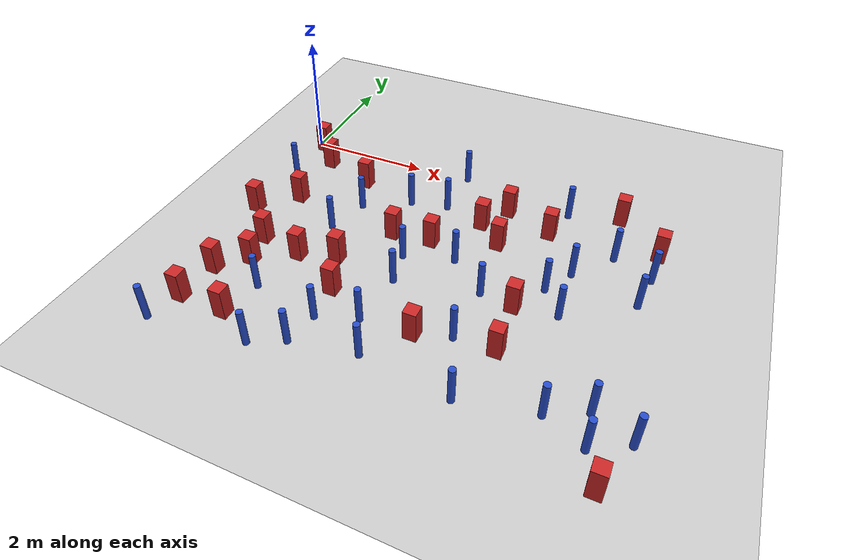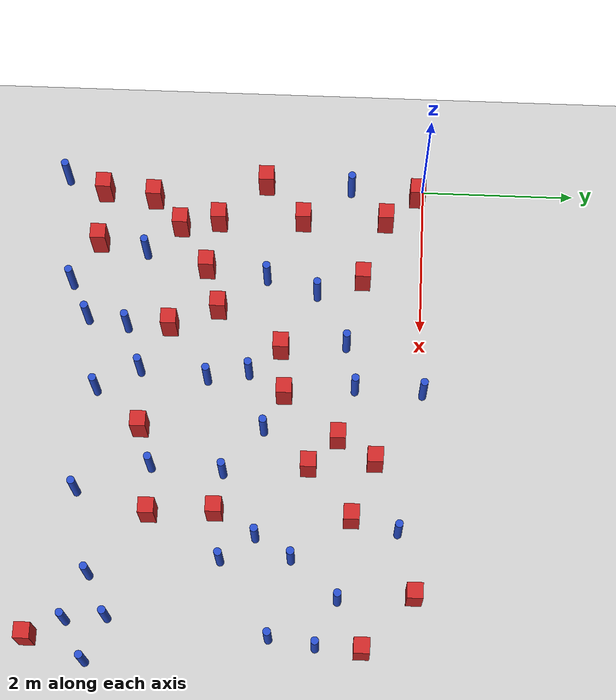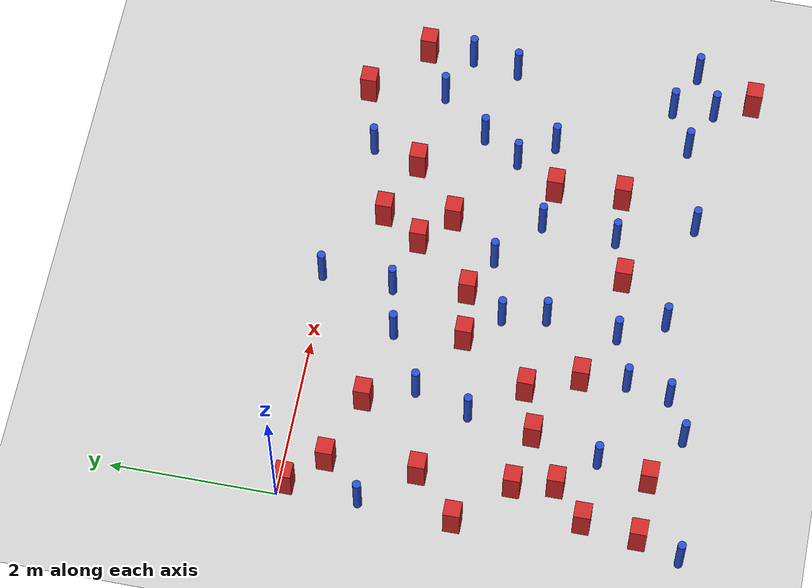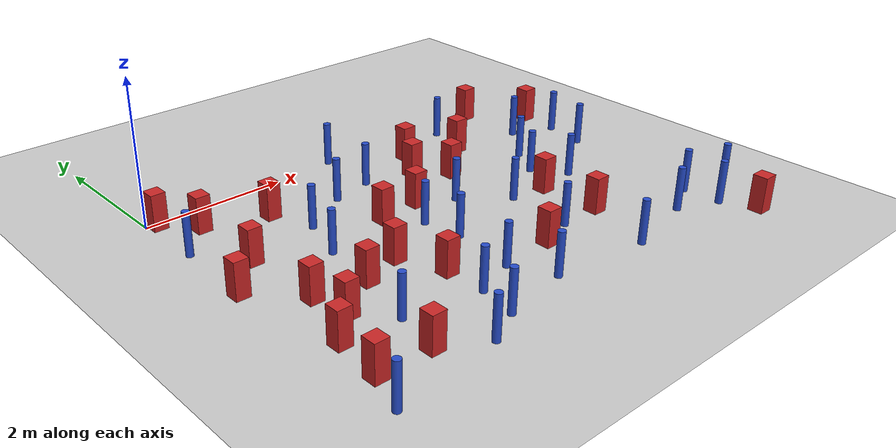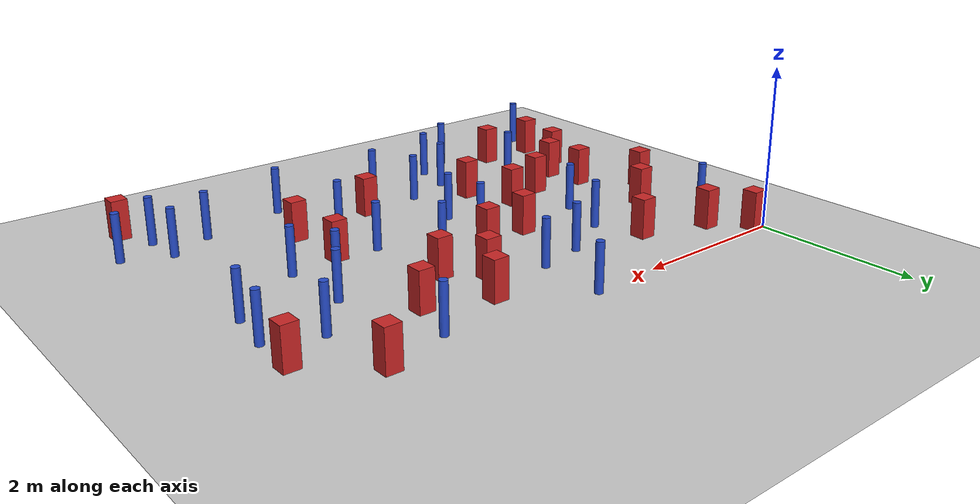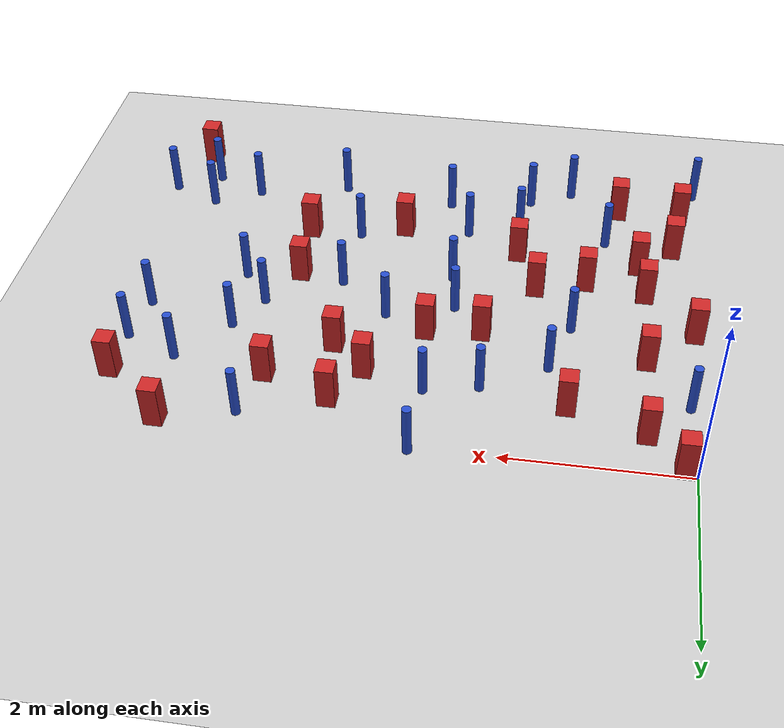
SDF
<sdf version="1.6">
 <world name="default">
  <model name="ground_plane">
   <static>1</static>
   <link name="link">
    <collision name="collision">
     <geometry><plane><normal>0 0 1</normal><size>100 100</size></plane></geometry>
     <surface><friction><ode><mu>100</mu><mu2>50</mu2></ode></friction></surface>
    </collision>
    <visual name="visual">
     <cast_shadows>0</cast_shadows>
     <geometry><plane><normal>0 0 1</normal><size>100 100</size></plane></geometry>
     <material>
      <ambient>1.0 1.0 1.0 1.0</ambient>
      <diffuse>0.8 0.8 0.8 1.0</diffuse>
      <specular>0.01 0.01 0.01 1.000000</specular>
     </material>
    </visual>
   </link>
  </model>
  <model name="NamedLocations">
   <static>true</static>
   <link name="DefaultStart"><pose>8.5 0 0 0 0 3.14</pose></link>
  </model>
  <model name="pole_obstacle6">
   <static>true</static>
   <pose>5.41370752301 -4.05571315219 -3.09024884793e-07 -7.19054271911e-07 -2.1131507516e-07 -1.93935509277e-07</pose>
   <link name="link">
    <pose>0 0 0.3 0 -0 0</pose>
    <inertial>
     <mass>1</mass>
     <inertia><ixx>0.145833</ixx><ixy>0</ixy><ixz>0</ixz><iyy>0.145833</iyy><iyz>0</iyz><izz>0.125</izz></inertia>
    </inertial>
    <collision name="collision">
     <geometry><cylinder><radius>0.05</radius><length>.6</length></cylinder></geometry>
    </collision>
    <visual name="visual">
     <geometry><cylinder><radius>0.05</radius><length>.6</length></cylinder></geometry>
     <material>
      <script><name>Gazebo/Blue</name><uri>file://media/materials/scripts/gazebo.material</uri></script>
     </material>
    </visual>
   </link>
  </model>
  <model name="square_post_obstacle2">
   <static>true</static>
   <pose>3.83522175505 -0.541550646575 -4.36207812815e-07 3.75137919937e-06 9.77721102514e-07 2.47381364184e-05</pose>
   <link name="link">
    <pose>0 0 0.25 0 -0 0</pose>
    <inertial>
     <mass>100</mass>
     <inertia>
      <ixx>0.166667</ixx>
      <ixy>0</ixy>
      <ixz>0</ixz>
      <iyy>0.166667</iyy>
      <iyz>0</iyz>
      <izz>0.166667</izz>
     </inertia>
    </inertial>
    <collision name="collision"><geometry><box><size>.2 .2 .5</size></box></geometry></collision>
    <visual name="visual">
     <geometry><box><size>.2 .2 .5</size></box></geometry>
     <material>
      <script><name>Gazebo/Red</name><uri>file://media/materials/scripts/gazebo.material</uri></script>
     </material>
    </visual>
   </link>
  </model>
  <model name="square_post_obstacle14">
   <static>true</static>
   <pose>2.96934623551 -1.7296324275 -4.36207812815e-07 3.75137919937e-06 9.77721102514e-07 2.47381364184e-05</pose>
   <link name="link">
    <pose>0 0 0.25 0 -0 0</pose>
    <inertial>
     <mass>100</mass>
     <inertia>
      <ixx>0.166667</ixx>
      <ixy>0</ixy>
      <ixz>0</ixz>
      <iyy>0.166667</iyy>
      <iyz>0</iyz>
      <izz>0.166667</izz>
     </inertia>
    </inertial>
    <collision name="collision"><geometry><box><size>.2 .2 .5</size></box></geometry></collision>
    <visual name="visual">
     <geometry><box><size>.2 .2 .5</size></box></geometry>
     <material>
      <script><name>Gazebo/Red</name><uri>file://media/materials/scripts/gazebo.material</uri></script>
     </material>
    </visual>
   </link>
  </model>
  <model name="square_post_obstacle21">
   <static>true</static>
   <pose>0.274103796949 -3.56906607727 -4.36207812815e-07 3.75137919937e-06 9.77721102514e-07 2.47381364184e-05</pose>
   <link name="link">
    <pose>0 0 0.25 0 -0 0</pose>
    <inertial>
     <mass>100</mass>
     <inertia>
      <ixx>0.166667</ixx>
      <ixy>0</ixy>
      <ixz>0</ixz>
      <iyy>0.166667</iyy>
      <iyz>0</iyz>
      <izz>0.166667</izz>
     </inertia>
    </inertial>
    <collision name="collision"><geometry><box><size>.2 .2 .5</size></box></geometry></collision>
    <visual name="visual">
     <geometry><box><size>.2 .2 .5</size></box></geometry>
     <material>
      <script><name>Gazebo/Red</name><uri>file://media/materials/scripts/gazebo.material</uri></script>
     </material>
    </visual>
   </link>
  </model>
  <model name="square_post_obstacle26">
   <static>true</static>
   <pose>1.35001822361 -0.771365058201 -4.36207812815e-07 3.75137919937e-06 9.77721102514e-07 2.47381364184e-05</pose>
   <link name="link">
    <pose>0 0 0.25 0 -0 0</pose>
    <inertial>
     <mass>100</mass>
     <inertia>
      <ixx>0.166667</ixx>
      <ixy>0</ixy>
      <ixz>0</ixz>
      <iyy>0.166667</iyy>
      <iyz>0</iyz>
      <izz>0.166667</izz>
     </inertia>
    </inertial>
    <collision name="collision"><geometry><box><size>.2 .2 .5</size></box></geometry></collision>
    <visual name="visual">
     <geometry><box><size>.2 .2 .5</size></box></geometry>
     <material>
      <script><name>Gazebo/Red</name><uri>file://media/materials/scripts/gazebo.material</uri></script>
     </material>
    </visual>
   </link>
  </model>
  <model name="pole_obstacle33">
   <static>true</static>
   <pose>5.62939309707 -0.957960824074 -3.09024884793e-07 -7.19054271912e-07 -2.11315075132e-07 -1.93935509264e-07</pose>
   <link name="link">
    <pose>0 0 0.3 0 -0 0</pose>
    <inertial>
     <mass>1</mass>
     <inertia><ixx>0.145833</ixx><ixy>0</ixy><ixz>0</ixz><iyy>0.145833</iyy><iyz>0</iyz><izz>0.125</izz></inertia>
    </inertial>
    <collision name="collision">
     <geometry><cylinder><radius>0.05</radius><length>.6</length></cylinder></geometry>
    </collision>
    <visual name="visual">
     <geometry><cylinder><radius>0.05</radius><length>.6</length></cylinder></geometry>
     <material>
      <script><name>Gazebo/Blue</name><uri>file://media/materials/scripts/gazebo.material</uri></script>
     </material>
    </visual>
   </link>
  </model>
  <model name="pole_obstacle42">
   <static>true</static>
   <pose>6.22160740358 -1.21050497575 -3.09024884793e-07 -7.19054271912e-07 -2.11315075124e-07 -1.93935509261e-07</pose>
   <link name="link">
    <pose>0 0 0.3 0 -0 0</pose>
    <inertial>
     <mass>1</mass>
     <inertia><ixx>0.145833</ixx><ixy>0</ixy><ixz>0</ixz><iyy>0.145833</iyy><iyz>0</iyz><izz>0.125</izz></inertia>
    </inertial>
    <collision name="collision">
     <geometry><cylinder><radius>0.05</radius><length>.6</length></cylinder></geometry>
    </collision>
    <visual name="visual">
     <geometry><cylinder><radius>0.05</radius><length>.6</length></cylinder></geometry>
     <material>
      <script><name>Gazebo/Blue</name><uri>file://media/materials/scripts/gazebo.material</uri></script>
     </material>
    </visual>
   </link>
  </model>
  <model name="pole_obstacle47">
   <static>true</static>
   <pose>2.01590928017 -4.33090438591 -3.09024884793e-07 -7.19054271912e-07 -2.11315075136e-07 -1.93935509266e-07</pose>
   <link name="link">
    <pose>0 0 0.3 0 -0 0</pose>
    <inertial>
     <mass>1</mass>
     <inertia><ixx>0.145833</ixx><ixy>0</ixy><ixz>0</ixz><iyy>0.145833</iyy><iyz>0</iyz><izz>0.125</izz></inertia>
    </inertial>
    <collision name="collision">
     <geometry><cylinder><radius>0.05</radius><length>.6</length></cylinder></geometry>
    </collision>
    <visual name="visual">
     <geometry><cylinder><radius>0.05</radius><length>.6</length></cylinder></geometry>
     <material>
      <script><name>Gazebo/Blue</name><uri>file://media/materials/scripts/gazebo.material</uri></script>
     </material>
    </visual>
   </link>
  </model>
  <model name="pole_obstacle54">
   <static>true</static>
   <pose>2.99073608945 -4.14617790098 -3.09024884793e-07 -7.19054271912e-07 -2.11315075134e-07 -1.93935509266e-07</pose>
   <link name="link">
    <pose>0 0 0.3 0 -0 0</pose>
    <inertial>
     <mass>1</mass>
     <inertia><ixx>0.145833</ixx><ixy>0</ixy><ixz>0</ixz><iyy>0.145833</iyy><iyz>0</iyz><izz>0.125</izz></inertia>
    </inertial>
    <collision name="collision">
     <geometry><cylinder><radius>0.05</radius><length>.6</length></cylinder></geometry>
    </collision>
    <visual name="visual">
     <geometry><cylinder><radius>0.05</radius><length>.6</length></cylinder></geometry>
     <material>
      <script><name>Gazebo/Blue</name><uri>file://media/materials/scripts/gazebo.material</uri></script>
     </material>
    </visual>
   </link>
  </model>
  <model name="square_post_obstacle46">
   <static>true</static>
   <pose>0.532385706413 -1.58189750641 -4.36207812815e-07 3.75137919937e-06 9.77721102514e-07 2.47381364184e-05</pose>
   <link name="link">
    <pose>0 0 0.25 0 -0 0</pose>
    <inertial>
     <mass>100</mass>
     <inertia>
      <ixx>0.166667</ixx>
      <ixy>0</ixy>
      <ixz>0</ixz>
      <iyy>0.166667</iyy>
      <iyz>0</iyz>
      <izz>0.166667</izz>
     </inertia>
    </inertial>
    <collision name="collision"><geometry><box><size>.2 .2 .5</size></box></geometry></collision>
    <visual name="visual">
     <geometry><box><size>.2 .2 .5</size></box></geometry>
     <material>
      <script><name>Gazebo/Red</name><uri>file://media/materials/scripts/gazebo.material</uri></script>
     </material>
    </visual>
   </link>
  </model>
  <model name="pole_obstacle65">
   <static>true</static>
   <pose>5.13125835526 -1.55150832187 -3.09024884793e-07 -7.19054271912e-07 -2.11315075124e-07 -1.93935509261e-07</pose>
   <link name="link">
    <pose>0 0 0.3 0 -0 0</pose>
    <inertial>
     <mass>1</mass>
     <inertia><ixx>0.145833</ixx><ixy>0</ixy><ixz>0</ixz><iyy>0.145833</iyy><iyz>0</iyz><izz>0.125</izz></inertia>
    </inertial>
    <collision name="collision">
     <geometry><cylinder><radius>0.05</radius><length>.6</length></cylinder></geometry>
    </collision>
    <visual name="visual">
     <geometry><cylinder><radius>0.05</radius><length>.6</length></cylinder></geometry>
     <material>
      <script><name>Gazebo/Blue</name><uri>file://media/materials/scripts/gazebo.material</uri></script>
     </material>
    </visual>
   </link>
  </model>
  <model name="pole_obstacle67">
   <static>true</static>
   <pose>1.57808921263 -1.35827191691 -3.09024884793e-07 -7.19054271912e-07 -2.1131507513e-07 -1.93935509263e-07</pose>
   <link name="link">
    <pose>0 0 0.3 0 -0 0</pose>
    <inertial>
     <mass>1</mass>
     <inertia><ixx>0.145833</ixx><ixy>0</ixy><ixz>0</ixz><iyy>0.145833</iyy><iyz>0</iyz><izz>0.125</izz></inertia>
    </inertial>
    <collision name="collision">
     <geometry><cylinder><radius>0.05</radius><length>.6</length></cylinder></geometry>
    </collision>
    <visual name="visual">
     <geometry><cylinder><radius>0.05</radius><length>.6</length></cylinder></geometry>
     <material>
      <script><name>Gazebo/Blue</name><uri>file://media/materials/scripts/gazebo.material</uri></script>
     </material>
    </visual>
   </link>
  </model>
  <model name="pole_obstacle68">
   <static>true</static>
   <pose>5.99445630821 -4.29760967927 -3.09024884793e-07 -7.19054271911e-07 -2.1131507516e-07 -1.93935509277e-07</pose>
   <link name="link">
    <pose>0 0 0.3 0 -0 0</pose>
    <inertial>
     <mass>1</mass>
     <inertia><ixx>0.145833</ixx><ixy>0</ixy><ixz>0</ixz><iyy>0.145833</iyy><iyz>0</iyz><izz>0.125</izz></inertia>
    </inertial>
    <collision name="collision">
     <geometry><cylinder><radius>0.05</radius><length>.6</length></cylinder></geometry>
    </collision>
    <visual name="visual">
     <geometry><cylinder><radius>0.05</radius><length>.6</length></cylinder></geometry>
     <material>
      <script><name>Gazebo/Blue</name><uri>file://media/materials/scripts/gazebo.material</uri></script>
     </material>
    </visual>
   </link>
  </model>
  <model name="square_post_obstacle57">
   <static>true</static>
   <pose>1.25753833666 -2.81987854564 -4.36207812815e-07 3.75137919937e-06 9.77721102514e-07 2.47381364184e-05</pose>
   <link name="link">
    <pose>0 0 0.25 0 -0 0</pose>
    <inertial>
     <mass>100</mass>
     <inertia>
      <ixx>0.166667</ixx>
      <ixy>0</ixy>
      <ixz>0</ixz>
      <iyy>0.166667</iyy>
      <iyz>0</iyz>
      <izz>0.166667</izz>
     </inertia>
    </inertial>
    <collision name="collision"><geometry><box><size>.2 .2 .5</size></box></geometry></collision>
    <visual name="visual">
     <geometry><box><size>.2 .2 .5</size></box></geometry>
     <material>
      <script><name>Gazebo/Red</name><uri>file://media/materials/scripts/gazebo.material</uri></script>
     </material>
    </visual>
   </link>
  </model>
  <model name="square_post_obstacle78">
   <static>true</static>
   <pose>3.92960659159 -1.3809431987 -4.36207812815e-07 3.75137919937e-06 9.77721102514e-07 2.47381364184e-05</pose>
   <link name="link">
    <pose>0 0 0.25 0 -0 0</pose>
    <inertial>
     <mass>100</mass>
     <inertia>
      <ixx>0.166667</ixx>
      <ixy>0</ixy>
      <ixz>0</ixz>
      <iyy>0.166667</iyy>
      <iyz>0</iyz>
      <izz>0.166667</izz>
     </inertia>
    </inertial>
    <collision name="collision"><geometry><box><size>.2 .2 .5</size></box></geometry></collision>
    <visual name="visual">
     <geometry><box><size>.2 .2 .5</size></box></geometry>
     <material>
      <script><name>Gazebo/Red</name><uri>file://media/materials/scripts/gazebo.material</uri></script>
     </material>
    </visual>
   </link>
  </model>
  <model name="square_post_obstacle80">
   <static>true</static>
   <pose>5.54136779875 -0.013262688718 -4.36207812815e-07 3.75137919937e-06 9.77721102514e-07 2.47381364184e-05</pose>
   <link name="link">
    <pose>0 0 0.25 0 -0 0</pose>
    <inertial>
     <mass>100</mass>
     <inertia>
      <ixx>0.166667</ixx>
      <ixy>0</ixy>
      <ixz>0</ixz>
      <iyy>0.166667</iyy>
      <iyz>0</iyz>
      <izz>0.166667</izz>
     </inertia>
    </inertial>
    <collision name="collision"><geometry><box><size>.2 .2 .5</size></box></geometry></collision>
    <visual name="visual">
     <geometry><box><size>.2 .2 .5</size></box></geometry>
     <material>
      <script><name>Gazebo/Red</name><uri>file://media/materials/scripts/gazebo.material</uri></script>
     </material>
    </visual>
   </link>
  </model>
  <model name="square_post_obstacle88">
   <static>true</static>
   <pose>3.5407820591 -1.02094151093 -4.36207812815e-07 3.75137919937e-06 9.77721102514e-07 2.47381364184e-05</pose>
   <link name="link">
    <pose>0 0 0.25 0 -0 0</pose>
    <inertial>
     <mass>100</mass>
     <inertia>
      <ixx>0.166667</ixx>
      <ixy>0</ixy>
      <ixz>0</ixz>
      <iyy>0.166667</iyy>
      <iyz>0</iyz>
      <izz>0.166667</izz>
     </inertia>
    </inertial>
    <collision name="collision"><geometry><box><size>.2 .2 .5</size></box></geometry></collision>
    <visual name="visual">
     <geometry><box><size>.2 .2 .5</size></box></geometry>
     <material>
      <script><name>Gazebo/Red</name><uri>file://media/materials/scripts/gazebo.material</uri></script>
     </material>
    </visual>
   </link>
  </model>
  <model name="pole_obstacle99">
   <static>true</static>
   <pose>4.34175962931 -4.30100938707 -3.09024884793e-07 -7.19054271911e-07 -2.1131507516e-07 -1.93935509277e-07</pose>
   <link name="link">
    <pose>0 0 0.3 0 -0 0</pose>
    <inertial>
     <mass>1</mass>
     <inertia><ixx>0.145833</ixx><ixy>0</ixy><ixz>0</ixz><iyy>0.145833</iyy><iyz>0</iyz><izz>0.125</izz></inertia>
    </inertial>
    <collision name="collision">
     <geometry><cylinder><radius>0.05</radius><length>.6</length></cylinder></geometry>
    </collision>
    <visual name="visual">
     <geometry><cylinder><radius>0.05</radius><length>.6</length></cylinder></geometry>
     <material>
      <script><name>Gazebo/Blue</name><uri>file://media/materials/scripts/gazebo.material</uri></script>
     </material>
    </visual>
   </link>
  </model>
  <model name="square_post_obstacle94">
   <static>true</static>
   <pose>4.59566704232 -3.3653539252 -4.36207812815e-07 3.75137919937e-06 9.77721102514e-07 2.47381364184e-05</pose>
   <link name="link">
    <pose>0 0 0.25 0 -0 0</pose>
    <inertial>
     <mass>100</mass>
     <inertia>
      <ixx>0.166667</ixx>
      <ixy>0</ixy>
      <ixz>0</ixz>
      <iyy>0.166667</iyy>
      <iyz>0</iyz>
      <izz>0.166667</izz>
     </inertia>
    </inertial>
    <collision name="collision"><geometry><box><size>.2 .2 .5</size></box></geometry></collision>
    <visual name="visual">
     <geometry><box><size>.2 .2 .5</size></box></geometry>
     <material>
      <script><name>Gazebo/Red</name><uri>file://media/materials/scripts/gazebo.material</uri></script>
     </material>
    </visual>
   </link>
  </model>
  <model name="square_post_obstacle97">
   <static>true</static>
   <pose>4.54905992666 -2.53281503204 -4.36207812815e-07 3.75137919937e-06 9.77721102514e-07 2.47381364184e-05</pose>
   <link name="link">
    <pose>0 0 0.25 0 -0 0</pose>
    <inertial>
     <mass>100</mass>
     <inertia>
      <ixx>0.166667</ixx>
      <ixy>0</ixy>
      <ixz>0</ixz>
      <iyy>0.166667</iyy>
      <iyz>0</iyz>
      <izz>0.166667</izz>
     </inertia>
    </inertial>
    <collision name="collision"><geometry><box><size>.2 .2 .5</size></box></geometry></collision>
    <visual name="visual">
     <geometry><box><size>.2 .2 .5</size></box></geometry>
     <material>
      <script><name>Gazebo/Red</name><uri>file://media/materials/scripts/gazebo.material</uri></script>
     </material>
    </visual>
   </link>
  </model>
  <model name="square_post_obstacle109">
   <static>true</static>
   <pose>0.0136327527798 -2.09203279439 -4.36207812815e-07 3.75137919937e-06 9.77721102514e-07 2.47381364184e-05</pose>
   <link name="link">
    <pose>0 0 0.25 0 -0 0</pose>
    <inertial>
     <mass>100</mass>
     <inertia>
      <ixx>0.166667</ixx>
      <ixy>0</ixy>
      <ixz>0</ixz>
      <iyy>0.166667</iyy>
      <iyz>0</iyz>
      <izz>0.166667</izz>
     </inertia>
    </inertial>
    <collision name="collision"><geometry><box><size>.2 .2 .5</size></box></geometry></collision>
    <visual name="visual">
     <geometry><box><size>.2 .2 .5</size></box></geometry>
     <material>
      <script><name>Gazebo/Red</name><uri>file://media/materials/scripts/gazebo.material</uri></script>
     </material>
    </visual>
   </link>
  </model>
  <model name="pole_obstacle113">
   <static>true</static>
   <pose>2.89784593704 0.0460752836448 -3.09024884848e-07 -7.19054271903e-07 -2.11315075194e-07 -1.93935509284e-07</pose>
   <link name="link">
    <pose>0 0 0.3 0 -0 0</pose>
    <inertial>
     <mass>1</mass>
     <inertia><ixx>0.145833</ixx><ixy>0</ixy><ixz>0</ixz><iyy>0.145833</iyy><iyz>0</iyz><izz>0.125</izz></inertia>
    </inertial>
    <collision name="collision">
     <geometry><cylinder><radius>0.05</radius><length>.6</length></cylinder></geometry>
    </collision>
    <visual name="visual">
     <geometry><cylinder><radius>0.05</radius><length>.6</length></cylinder></geometry>
     <material>
      <script><name>Gazebo/Blue</name><uri>file://media/materials/scripts/gazebo.material</uri></script>
     </material>
    </visual>
   </link>
  </model>
  <model name="pole_obstacle116">
   <static>true</static>
   <pose>4.04351604619 -2.45953275468 -3.09024884793e-07 -7.19054271912e-07 -2.11315075138e-07 -1.93935509267e-07</pose>
   <link name="link">
    <pose>0 0 0.3 0 -0 0</pose>
    <inertial>
     <mass>1</mass>
     <inertia><ixx>0.145833</ixx><ixy>0</ixy><ixz>0</ixz><iyy>0.145833</iyy><iyz>0</iyz><izz>0.125</izz></inertia>
    </inertial>
    <collision name="collision">
     <geometry><cylinder><radius>0.05</radius><length>.6</length></cylinder></geometry>
    </collision>
    <visual name="visual">
     <geometry><cylinder><radius>0.05</radius><length>.6</length></cylinder></geometry>
     <material>
      <script><name>Gazebo/Blue</name><uri>file://media/materials/scripts/gazebo.material</uri></script>
     </material>
    </visual>
   </link>
  </model>
  <model name="square_post_obstacle116">
   <static>true</static>
   <pose>2.08381652786 -3.25489733977 -4.36207812815e-07 3.75137919937e-06 9.77721102514e-07 2.47381364184e-05</pose>
   <link name="link">
    <pose>0 0 0.25 0 -0 0</pose>
    <inertial>
     <mass>100</mass>
     <inertia>
      <ixx>0.166667</ixx>
      <ixy>0</ixy>
      <ixz>0</ixz>
      <iyy>0.166667</iyy>
      <iyz>0</iyz>
      <izz>0.166667</izz>
     </inertia>
    </inertial>
    <collision name="collision"><geometry><box><size>.2 .2 .5</size></box></geometry></collision>
    <visual name="visual">
     <geometry><box><size>.2 .2 .5</size></box></geometry>
     <material>
      <script><name>Gazebo/Red</name><uri>file://media/materials/scripts/gazebo.material</uri></script>
     </material>
    </visual>
   </link>
  </model>
  <model name="pole_obstacle118">
   <static>true</static>
   <pose>1.06473659317 -3.6279396367 -3.09024884793e-07 -7.19054271912e-07 -2.11315075132e-07 -1.93935509263e-07</pose>
   <link name="link">
    <pose>0 0 0.3 0 -0 0</pose>
    <inertial>
     <mass>1</mass>
     <inertia><ixx>0.145833</ixx><ixy>0</ixy><ixz>0</ixz><iyy>0.145833</iyy><iyz>0</iyz><izz>0.125</izz></inertia>
    </inertial>
    <collision name="collision">
     <geometry><cylinder><radius>0.05</radius><length>.6</length></cylinder></geometry>
    </collision>
    <visual name="visual">
     <geometry><cylinder><radius>0.05</radius><length>.6</length></cylinder></geometry>
     <material>
      <script><name>Gazebo/Blue</name><uri>file://media/materials/scripts/gazebo.material</uri></script>
     </material>
    </visual>
   </link>
  </model>
  <model name="pole_obstacle120">
   <static>true</static>
   <pose>2.28047192991 -0.954005012498 -3.09024884793e-07 -7.19054271912e-07 -2.11315075118e-07 -1.93935509258e-07</pose>
   <link name="link">
    <pose>0 0 0.3 0 -0 0</pose>
    <inertial>
     <mass>1</mass>
     <inertia><ixx>0.145833</ixx><ixy>0</ixy><ixz>0</ixz><iyy>0.145833</iyy><iyz>0</iyz><izz>0.125</izz></inertia>
    </inertial>
    <collision name="collision">
     <geometry><cylinder><radius>0.05</radius><length>.6</length></cylinder></geometry>
    </collision>
    <visual name="visual">
     <geometry><cylinder><radius>0.05</radius><length>.6</length></cylinder></geometry>
     <material>
      <script><name>Gazebo/Blue</name><uri>file://media/materials/scripts/gazebo.material</uri></script>
     </material>
    </visual>
   </link>
  </model>
  <model name="pole_obstacle121">
   <static>true</static>
   <pose>5.94305874935 -3.79035137814 -3.09024884793e-07 -7.19054271912e-07 -2.11315075144e-07 -1.93935509269e-07</pose>
   <link name="link">
    <pose>0 0 0.3 0 -0 0</pose>
    <inertial>
     <mass>1</mass>
     <inertia><ixx>0.145833</ixx><ixy>0</ixy><ixz>0</ixz><iyy>0.145833</iyy><iyz>0</iyz><izz>0.125</izz></inertia>
    </inertial>
    <collision name="collision">
     <geometry><cylinder><radius>0.05</radius><length>.6</length></cylinder></geometry>
    </collision>
    <visual name="visual">
     <geometry><cylinder><radius>0.05</radius><length>.6</length></cylinder></geometry>
     <material>
      <script><name>Gazebo/Blue</name><uri>file://media/materials/scripts/gazebo.material</uri></script>
     </material>
    </visual>
   </link>
  </model>
  <model name="square_post_obstacle121">
   <static>true</static>
   <pose>0.931466023739 -4.25219699427 -4.36207812815e-07 3.75137919937e-06 9.77721102514e-07 2.47381364184e-05</pose>
   <link name="link">
    <pose>0 0 0.25 0 -0 0</pose>
    <inertial>
     <mass>100</mass>
     <inertia>
      <ixx>0.166667</ixx>
      <ixy>0</ixy>
      <ixz>0</ixz>
      <iyy>0.166667</iyy>
      <iyz>0</iyz>
      <izz>0.166667</izz>
     </inertia>
    </inertial>
    <collision name="collision"><geometry><box><size>.2 .2 .5</size></box></geometry></collision>
    <visual name="visual">
     <geometry><box><size>.2 .2 .5</size></box></geometry>
     <material>
      <script><name>Gazebo/Red</name><uri>file://media/materials/scripts/gazebo.material</uri></script>
     </material>
    </visual>
   </link>
  </model>
  <model name="pole_obstacle124">
   <static>true</static>
   <pose>6.49184901637 -4.02224924006 -3.09024884793e-07 -7.19054271911e-07 -2.11315075159e-07 -1.93935509277e-07</pose>
   <link name="link">
    <pose>0 0 0.3 0 -0 0</pose>
    <inertial>
     <mass>1</mass>
     <inertia><ixx>0.145833</ixx><ixy>0</ixy><ixz>0</ixz><iyy>0.145833</iyy><iyz>0</iyz><izz>0.125</izz></inertia>
    </inertial>
    <collision name="collision">
     <geometry><cylinder><radius>0.05</radius><length>.6</length></cylinder></geometry>
    </collision>
    <visual name="visual">
     <geometry><cylinder><radius>0.05</radius><length>.6</length></cylinder></geometry>
     <material>
      <script><name>Gazebo/Blue</name><uri>file://media/materials/scripts/gazebo.material</uri></script>
     </material>
    </visual>
   </link>
  </model>
  <model name="pole_obstacle135">
   <static>true</static>
   <pose>2.70900335924 -3.59884788854 -3.09024884793e-07 -7.19054271912e-07 -2.11315075144e-07 -1.93935509271e-07</pose>
   <link name="link">
    <pose>0 0 0.3 0 -0 0</pose>
    <inertial>
     <mass>1</mass>
     <inertia><ixx>0.145833</ixx><ixy>0</ixy><ixz>0</ixz><iyy>0.145833</iyy><iyz>0</iyz><izz>0.125</izz></inertia>
    </inertial>
    <collision name="collision">
     <geometry><cylinder><radius>0.05</radius><length>.6</length></cylinder></geometry>
    </collision>
    <visual name="visual">
     <geometry><cylinder><radius>0.05</radius><length>.6</length></cylinder></geometry>
     <material>
      <script><name>Gazebo/Blue</name><uri>file://media/materials/scripts/gazebo.material</uri></script>
     </material>
    </visual>
   </link>
  </model>
  <model name="square_post_obstacle139">
   <static>true</static>
   <pose>6.23563417612 -0.642656546016 -4.36207812815e-07 3.75137919937e-06 9.77721102514e-07 2.47381364184e-05</pose>
   <link name="link">
    <pose>0 0 0.25 0 -0 0</pose>
    <inertial>
     <mass>100</mass>
     <inertia>
      <ixx>0.166667</ixx>
      <ixy>0</ixy>
      <ixz>0</ixz>
      <iyy>0.166667</iyy>
      <iyz>0</iyz>
      <izz>0.166667</izz>
     </inertia>
    </inertial>
    <collision name="collision"><geometry><box><size>.2 .2 .5</size></box></geometry></collision>
    <visual name="visual">
     <geometry><box><size>.2 .2 .5</size></box></geometry>
     <material>
      <script><name>Gazebo/Red</name><uri>file://media/materials/scripts/gazebo.material</uri></script>
     </material>
    </visual>
   </link>
  </model>
  <model name="square_post_obstacle143">
   <static>true</static>
   <pose>0.666583273358 -3.19550970261 -4.36207812815e-07 3.75137919937e-06 9.77721102514e-07 2.47381364184e-05</pose>
   <link name="link">
    <pose>0 0 0.25 0 -0 0</pose>
    <inertial>
     <mass>100</mass>
     <inertia>
      <ixx>0.166667</ixx>
      <ixy>0</ixy>
      <ixz>0</ixz>
      <iyy>0.166667</iyy>
      <iyz>0</iyz>
      <izz>0.166667</izz>
     </inertia>
    </inertial>
    <collision name="collision"><geometry><box><size>.2 .2 .5</size></box></geometry></collision>
    <visual name="visual">
     <geometry><box><size>.2 .2 .5</size></box></geometry>
     <material>
      <script><name>Gazebo/Red</name><uri>file://media/materials/scripts/gazebo.material</uri></script>
     </material>
    </visual>
   </link>
  </model>
  <model name="pole_obstacle153">
   <static>true</static>
   <pose>2.11252980314 -3.8091109063 -3.09024884793e-07 -7.19054271912e-07 -2.11315075144e-07 -1.93935509271e-07</pose>
   <link name="link">
    <pose>0 0 0.3 0 -0 0</pose>
    <inertial>
     <mass>1</mass>
     <inertia><ixx>0.145833</ixx><ixy>0</ixy><ixz>0</ixz><iyy>0.145833</iyy><iyz>0</iyz><izz>0.125</izz></inertia>
    </inertial>
    <collision name="collision">
     <geometry><cylinder><radius>0.05</radius><length>.6</length></cylinder></geometry>
    </collision>
    <visual name="visual">
     <geometry><cylinder><radius>0.05</radius><length>.6</length></cylinder></geometry>
     <material>
      <script><name>Gazebo/Blue</name><uri>file://media/materials/scripts/gazebo.material</uri></script>
     </material>
    </visual>
   </link>
  </model>
  <model name="pole_obstacle154">
   <static>true</static>
   <pose>0.0183382390835 -4.74717367052 -3.09024884793e-07 -7.19054271912e-07 -2.11315075129e-07 -1.93935509263e-07</pose>
   <link name="link">
    <pose>0 0 0.3 0 -0 0</pose>
    <inertial>
     <mass>1</mass>
     <inertia><ixx>0.145833</ixx><ixy>0</ixy><ixz>0</ixz><iyy>0.145833</iyy><iyz>0</iyz><izz>0.125</izz></inertia>
    </inertial>
    <collision name="collision">
     <geometry><cylinder><radius>0.05</radius><length>.6</length></cylinder></geometry>
    </collision>
    <visual name="visual">
     <geometry><cylinder><radius>0.05</radius><length>.6</length></cylinder></geometry>
     <material>
      <script><name>Gazebo/Blue</name><uri>file://media/materials/scripts/gazebo.material</uri></script>
     </material>
    </visual>
   </link>
  </model>
  <model name="pole_obstacle157">
   <static>true</static>
   <pose>4.74278066149 -0.229486476131 -3.09024884793e-07 -7.19054271912e-07 -2.11315075129e-07 -1.93935509264e-07</pose>
   <link name="link">
    <pose>0 0 0.3 0 -0 0</pose>
    <inertial>
     <mass>1</mass>
     <inertia><ixx>0.145833</ixx><ixy>0</ixy><ixz>0</ixz><iyy>0.145833</iyy><iyz>0</iyz><izz>0.125</izz></inertia>
    </inertial>
    <collision name="collision">
     <geometry><cylinder><radius>0.05</radius><length>.6</length></cylinder></geometry>
    </collision>
    <visual name="visual">
     <geometry><cylinder><radius>0.05</radius><length>.6</length></cylinder></geometry>
     <material>
      <script><name>Gazebo/Blue</name><uri>file://media/materials/scripts/gazebo.material</uri></script>
     </material>
    </visual>
   </link>
  </model>
  <model name="square_post_obstacle154">
   <static>true</static>
   <pose>2.35452126079 -1.79788321646 -4.36207812815e-07 3.75137919937e-06 9.77721102514e-07 2.47381364184e-05</pose>
   <link name="link">
    <pose>0 0 0.25 0 -0 0</pose>
    <inertial>
     <mass>100</mass>
     <inertia>
      <ixx>0.166667</ixx>
      <ixy>0</ixy>
      <ixz>0</ixz>
      <iyy>0.166667</iyy>
      <iyz>0</iyz>
      <izz>0.166667</izz>
     </inertia>
    </inertial>
    <collision name="collision"><geometry><box><size>.2 .2 .5</size></box></geometry></collision>
    <visual name="visual">
     <geometry><box><size>.2 .2 .5</size></box></geometry>
     <material>
      <script><name>Gazebo/Red</name><uri>file://media/materials/scripts/gazebo.material</uri></script>
     </material>
    </visual>
   </link>
  </model>
  <model name="pole_obstacle164">
   <static>true</static>
   <pose>3.45878609321 -1.96979718949 -3.09024884793e-07 -7.19054271912e-07 -2.11315075128e-07 -1.93935509262e-07</pose>
   <link name="link">
    <pose>0 0 0.3 0 -0 0</pose>
    <inertial>
     <mass>1</mass>
     <inertia><ixx>0.145833</ixx><ixy>0</ixy><ixz>0</ixz><iyy>0.145833</iyy><iyz>0</iyz><izz>0.125</izz></inertia>
    </inertial>
    <collision name="collision">
     <geometry><cylinder><radius>0.05</radius><length>.6</length></cylinder></geometry>
    </collision>
    <visual name="visual">
     <geometry><cylinder><radius>0.05</radius><length>.6</length></cylinder></geometry>
     <material>
      <script><name>Gazebo/Blue</name><uri>file://media/materials/scripts/gazebo.material</uri></script>
     </material>
    </visual>
   </link>
  </model>
  <model name="square_post_obstacle159">
   <static>true</static>
   <pose>3.47731949967 -3.54697788357 -4.36207812815e-07 3.75137919937e-06 9.77721102514e-07 2.47381364184e-05</pose>
   <link name="link">
    <pose>0 0 0.25 0 -0 0</pose>
    <inertial>
     <mass>100</mass>
     <inertia>
      <ixx>0.166667</ixx>
      <ixy>0</ixy>
      <ixz>0</ixz>
      <iyy>0.166667</iyy>
      <iyz>0</iyz>
      <izz>0.166667</izz>
     </inertia>
    </inertial>
    <collision name="collision"><geometry><box><size>.2 .2 .5</size></box></geometry></collision>
    <visual name="visual">
     <geometry><box><size>.2 .2 .5</size></box></geometry>
     <material>
      <script><name>Gazebo/Red</name><uri>file://media/materials/scripts/gazebo.material</uri></script>
     </material>
    </visual>
   </link>
  </model>
  <model name="square_post_obstacle161">
   <static>true</static>
   <pose>0.507315246242 -0.492368623041 -4.36207812815e-07 3.75137919937e-06 9.77721102514e-07 2.47381364184e-05</pose>
   <link name="link">
    <pose>0 0 0.25 0 -0 0</pose>
    <inertial>
     <mass>100</mass>
     <inertia>
      <ixx>0.166667</ixx>
      <ixy>0</ixy>
      <ixz>0</ixz>
      <iyy>0.166667</iyy>
      <iyz>0</iyz>
      <izz>0.166667</izz>
     </inertia>
    </inertial>
    <collision name="collision"><geometry><box><size>.2 .2 .5</size></box></geometry></collision>
    <visual name="visual">
     <geometry><box><size>.2 .2 .5</size></box></geometry>
     <material>
      <script><name>Gazebo/Red</name><uri>file://media/materials/scripts/gazebo.material</uri></script>
     </material>
    </visual>
   </link>
  </model>
  <model name="square_post_obstacle165">
   <static>true</static>
   <pose>1.82466326162 -2.63788948855 -4.36207812815e-07 3.75137919937e-06 9.77721102514e-07 2.47381364184e-05</pose>
   <link name="link">
    <pose>0 0 0.25 0 -0 0</pose>
    <inertial>
     <mass>100</mass>
     <inertia>
      <ixx>0.166667</ixx>
      <ixy>0</ixy>
      <ixz>0</ixz>
      <iyy>0.166667</iyy>
      <iyz>0</iyz>
      <izz>0.166667</izz>
     </inertia>
    </inertial>
    <collision name="collision"><geometry><box><size>.2 .2 .5</size></box></geometry></collision>
    <visual name="visual">
     <geometry><box><size>.2 .2 .5</size></box></geometry>
     <material>
      <script><name>Gazebo/Red</name><uri>file://media/materials/scripts/gazebo.material</uri></script>
     </material>
    </visual>
   </link>
  </model>
  <model name="pole_obstacle172">
   <static>true</static>
   <pose>6.13303897201 -1.7891691566 -3.09024884793e-07 -7.19054271912e-07 -2.11315075124e-07 -1.93935509261e-07</pose>
   <link name="link">
    <pose>0 0 0.3 0 -0 0</pose>
    <inertial>
     <mass>1</mass>
     <inertia><ixx>0.145833</ixx><ixy>0</ixy><ixz>0</ixz><iyy>0.145833</iyy><iyz>0</iyz><izz>0.125</izz></inertia>
    </inertial>
    <collision name="collision">
     <geometry><cylinder><radius>0.05</radius><length>.6</length></cylinder></geometry>
    </collision>
    <visual name="visual">
     <geometry><cylinder><radius>0.05</radius><length>.6</length></cylinder></geometry>
     <material>
      <script><name>Gazebo/Blue</name><uri>file://media/materials/scripts/gazebo.material</uri></script>
     </material>
    </visual>
   </link>
  </model>
  <model name="square_post_obstacle173">
   <static>true</static>
   <pose>0.129055253561 -0.0795900721586 -4.36207812815e-07 3.75137919937e-06 9.77721102514e-07 2.47381364184e-05</pose>
   <link name="link">
    <pose>0 0 0.25 0 -0 0</pose>
    <inertial>
     <mass>100</mass>
     <inertia>
      <ixx>0.166667</ixx>
      <ixy>0</ixy>
      <ixz>0</ixz>
      <iyy>0.166667</iyy>
      <iyz>0</iyz>
      <izz>0.166667</izz>
     </inertia>
    </inertial>
    <collision name="collision"><geometry><box><size>.2 .2 .5</size></box></geometry></collision>
    <visual name="visual">
     <geometry><box><size>.2 .2 .5</size></box></geometry>
     <material>
      <script><name>Gazebo/Red</name><uri>file://media/materials/scripts/gazebo.material</uri></script>
     </material>
    </visual>
   </link>
  </model>
  <model name="square_post_obstacle175">
   <static>true</static>
   <pose>6.2060827344 -4.75187973525 -4.36207812815e-07 3.75137919937e-06 9.77721102514e-07 2.47381364184e-05</pose>
   <link name="link">
    <pose>0 0 0.25 0 -0 0</pose>
    <inertial>
     <mass>100</mass>
     <inertia>
      <ixx>0.166667</ixx>
      <ixy>0</ixy>
      <ixz>0</ixz>
      <iyy>0.166667</iyy>
      <iyz>0</iyz>
      <izz>0.166667</izz>
     </inertia>
    </inertial>
    <collision name="collision"><geometry><box><size>.2 .2 .5</size></box></geometry></collision>
    <visual name="visual">
     <geometry><box><size>.2 .2 .5</size></box></geometry>
     <material>
      <script><name>Gazebo/Red</name><uri>file://media/materials/scripts/gazebo.material</uri></script>
     </material>
    </visual>
   </link>
  </model>
  <model name="pole_obstacle181">
   <static>true</static>
   <pose>1.3772185706 -2.0229304282 -3.09024884793e-07 -7.19054271912e-07 -2.11315075147e-07 -1.9393550927e-07</pose>
   <link name="link">
    <pose>0 0 0.3 0 -0 0</pose>
    <inertial>
     <mass>1</mass>
     <inertia><ixx>0.145833</ixx><ixy>0</ixy><ixz>0</ixz><iyy>0.145833</iyy><iyz>0</iyz><izz>0.125</izz></inertia>
    </inertial>
    <collision name="collision">
     <geometry><cylinder><radius>0.05</radius><length>.6</length></cylinder></geometry>
    </collision>
    <visual name="visual">
     <geometry><cylinder><radius>0.05</radius><length>.6</length></cylinder></geometry>
     <material>
      <script><name>Gazebo/Blue</name><uri>file://media/materials/scripts/gazebo.material</uri></script>
     </material>
    </visual>
   </link>
  </model>
  <model name="pole_obstacle182">
   <static>true</static>
   <pose>3.99704270448 -3.37739061548 -3.09024884793e-07 -7.19054271912e-07 -2.11315075162e-07 -1.93935509281e-07</pose>
   <link name="link">
    <pose>0 0 0.3 0 -0 0</pose>
    <inertial>
     <mass>1</mass>
     <inertia><ixx>0.145833</ixx><ixy>0</ixy><ixz>0</ixz><iyy>0.145833</iyy><iyz>0</iyz><izz>0.125</izz></inertia>
    </inertial>
    <collision name="collision">
     <geometry><cylinder><radius>0.05</radius><length>.6</length></cylinder></geometry>
    </collision>
    <visual name="visual">
     <geometry><cylinder><radius>0.05</radius><length>.6</length></cylinder></geometry>
     <material>
      <script><name>Gazebo/Blue</name><uri>file://media/materials/scripts/gazebo.material</uri></script>
     </material>
    </visual>
   </link>
  </model>
  <model name="square_post_obstacle183">
   <static>true</static>
   <pose>0.194376315798 -4.23852967606 -4.36207812815e-07 3.75137919937e-06 9.77721102514e-07 2.47381364184e-05</pose>
   <link name="link">
    <pose>0 0 0.25 0 -0 0</pose>
    <inertial>
     <mass>100</mass>
     <inertia>
      <ixx>0.166667</ixx>
      <ixy>0</ixy>
      <ixz>0</ixz>
      <iyy>0.166667</iyy>
      <iyz>0</iyz>
      <izz>0.166667</izz>
     </inertia>
    </inertial>
    <collision name="collision"><geometry><box><size>.2 .2 .5</size></box></geometry></collision>
    <visual name="visual">
     <geometry><box><size>.2 .2 .5</size></box></geometry>
     <material>
      <script><name>Gazebo/Red</name><uri>file://media/materials/scripts/gazebo.material</uri></script>
     </material>
    </visual>
   </link>
  </model>
  <model name="square_post_obstacle189">
   <static>true</static>
   <pose>4.58362638311 -0.817566132159 -4.36207812815e-07 3.75137919937e-06 9.77721102514e-07 2.47381364184e-05</pose>
   <link name="link">
    <pose>0 0 0.25 0 -0 0</pose>
    <inertial>
     <mass>100</mass>
     <inertia>
      <ixx>0.166667</ixx>
      <ixy>0</ixy>
      <ixz>0</ixz>
      <iyy>0.166667</iyy>
      <iyz>0</iyz>
      <izz>0.166667</izz>
     </inertia>
    </inertial>
    <collision name="collision"><geometry><box><size>.2 .2 .5</size></box></geometry></collision>
    <visual name="visual">
     <geometry><box><size>.2 .2 .5</size></box></geometry>
     <material>
      <script><name>Gazebo/Red</name><uri>file://media/materials/scripts/gazebo.material</uri></script>
     </material>
    </visual>
   </link>
  </model>
  <model name="pole_obstacle190">
   <static>true</static>
   <pose>5.17684078638 -2.43524559881 -3.09024884793e-07 -7.19054271912e-07 -2.11315075144e-07 -1.93935509269e-07</pose>
   <link name="link">
    <pose>0 0 0.3 0 -0 0</pose>
    <inertial>
     <mass>1</mass>
     <inertia><ixx>0.145833</ixx><ixy>0</ixy><ixz>0</ixz><iyy>0.145833</iyy><iyz>0</iyz><izz>0.125</izz></inertia>
    </inertial>
    <collision name="collision">
     <geometry><cylinder><radius>0.05</radius><length>.6</length></cylinder></geometry>
    </collision>
    <visual name="visual">
     <geometry><cylinder><radius>0.05</radius><length>.6</length></cylinder></geometry>
     <material>
      <script><name>Gazebo/Blue</name><uri>file://media/materials/scripts/gazebo.material</uri></script>
     </material>
    </visual>
   </link>
  </model>
  <model name="square_post_obstacle200">
   <static>true</static>
   <pose>0.574210331716 -2.69644212294 -4.36207812815e-07 3.75137919937e-06 9.77721102514e-07 2.47381364184e-05</pose>
   <link name="link">
    <pose>0 0 0.25 0 -0 0</pose>
    <inertial>
     <mass>100</mass>
     <inertia>
      <ixx>0.166667</ixx>
      <ixy>0</ixy>
      <ixz>0</ixz>
      <iyy>0.166667</iyy>
      <iyz>0</iyz>
      <izz>0.166667</izz>
     </inertia>
    </inertial>
    <collision name="collision"><geometry><box><size>.2 .2 .5</size></box></geometry></collision>
    <visual name="visual">
     <geometry><box><size>.2 .2 .5</size></box></geometry>
     <material>
      <script><name>Gazebo/Red</name><uri>file://media/materials/scripts/gazebo.material</uri></script>
     </material>
    </visual>
   </link>
  </model>
  <model name="pole_obstacle196">
   <static>true</static>
   <pose>4.86253617739 -2.01009708589 -3.09024884793e-07 -7.19054271912e-07 -2.11315075132e-07 -1.93935509263e-07</pose>
   <link name="link">
    <pose>0 0 0.3 0 -0 0</pose>
    <inertial>
     <mass>1</mass>
     <inertia><ixx>0.145833</ixx><ixy>0</ixy><ixz>0</ixz><iyy>0.145833</iyy><iyz>0</iyz><izz>0.125</izz></inertia>
    </inertial>
    <collision name="collision">
     <geometry><cylinder><radius>0.05</radius><length>.6</length></cylinder></geometry>
    </collision>
    <visual name="visual">
     <geometry><cylinder><radius>0.05</radius><length>.6</length></cylinder></geometry>
     <material>
      <script><name>Gazebo/Blue</name><uri>file://media/materials/scripts/gazebo.material</uri></script>
     </material>
    </visual>
   </link>
  </model>
  <model name="pole_obstacle204">
   <static>true</static>
   <pose>1.52866067786 -4.57214608071 -3.09024884793e-07 -7.19054271912e-07 -2.11315075134e-07 -1.93935509265e-07</pose>
   <link name="link">
    <pose>0 0 0.3 0 -0 0</pose>
    <inertial>
     <mass>1</mass>
     <inertia><ixx>0.145833</ixx><ixy>0</ixy><ixz>0</ixz><iyy>0.145833</iyy><iyz>0</iyz><izz>0.125</izz></inertia>
    </inertial>
    <collision name="collision">
     <geometry><cylinder><radius>0.05</radius><length>.6</length></cylinder></geometry>
    </collision>
    <visual name="visual">
     <geometry><cylinder><radius>0.05</radius><length>.6</length></cylinder></geometry>
     <material>
      <script><name>Gazebo/Blue</name><uri>file://media/materials/scripts/gazebo.material</uri></script>
     </material>
    </visual>
   </link>
  </model>
  <model name="pole_obstacle206">
   <static>true</static>
   <pose>2.70345971014 -2.19567988249 -3.09024884793e-07 -7.19054271912e-07 -2.11315075144e-07 -1.93935509271e-07</pose>
   <link name="link">
    <pose>0 0 0.3 0 -0 0</pose>
    <inertial>
     <mass>1</mass>
     <inertia><ixx>0.145833</ixx><ixy>0</ixy><ixz>0</ixz><iyy>0.145833</iyy><iyz>0</iyz><izz>0.125</izz></inertia>
    </inertial>
    <collision name="collision">
     <geometry><cylinder><radius>0.05</radius><length>.6</length></cylinder></geometry>
    </collision>
    <visual name="visual">
     <geometry><cylinder><radius>0.05</radius><length>.6</length></cylinder></geometry>
     <material>
      <script><name>Gazebo/Blue</name><uri>file://media/materials/scripts/gazebo.material</uri></script>
     </material>
    </visual>
   </link>
  </model>
  <model name="pole_obstacle212">
   <static>true</static>
   <pose>2.87112616661 -0.826287205917 -3.09024884793e-07 -7.19054271913e-07 -2.1131507512e-07 -1.93935509259e-07</pose>
   <link name="link">
    <pose>0 0 0.3 0 -0 0</pose>
    <inertial>
     <mass>1</mass>
     <inertia><ixx>0.145833</ixx><ixy>0</ixy><ixz>0</ixz><iyy>0.145833</iyy><iyz>0</iyz><izz>0.125</izz></inertia>
    </inertial>
    <collision name="collision">
     <geometry><cylinder><radius>0.05</radius><length>.6</length></cylinder></geometry>
    </collision>
    <visual name="visual">
     <geometry><cylinder><radius>0.05</radius><length>.6</length></cylinder></geometry>
     <material>
      <script><name>Gazebo/Blue</name><uri>file://media/materials/scripts/gazebo.material</uri></script>
     </material>
    </visual>
   </link>
  </model>
  <model name="pole_obstacle221">
   <static>true</static>
   <pose>0.0606883745992 -0.959836617308 -3.09024884793e-07 -7.19054271912e-07 -2.11315075136e-07 -1.93935509266e-07</pose>
   <link name="link">
    <pose>0 0 0.3 0 -0 0</pose>
    <inertial>
     <mass>1</mass>
     <inertia><ixx>0.145833</ixx><ixy>0</ixy><ixz>0</ixz><iyy>0.145833</iyy><iyz>0</iyz><izz>0.125</izz></inertia>
    </inertial>
    <collision name="collision">
     <geometry><cylinder><radius>0.05</radius><length>.6</length></cylinder></geometry>
    </collision>
    <visual name="visual">
     <geometry><cylinder><radius>0.05</radius><length>.6</length></cylinder></geometry>
     <material>
      <script><name>Gazebo/Blue</name><uri>file://media/materials/scripts/gazebo.material</uri></script>
     </material>
    </visual>
   </link>
  </model>
  <model name="pole_obstacle226">
   <static>true</static>
   <pose>2.79737383874 -2.72727159261 -3.09024884793e-07 -7.19054271912e-07 -2.11315075144e-07 -1.93935509271e-07</pose>
   <link name="link">
    <pose>0 0 0.3 0 -0 0</pose>
    <inertial>
     <mass>1</mass>
     <inertia><ixx>0.145833</ixx><ixy>0</ixy><ixz>0</ixz><iyy>0.145833</iyy><iyz>0</iyz><izz>0.125</izz></inertia>
    </inertial>
    <collision name="collision">
     <geometry><cylinder><radius>0.05</radius><length>.6</length></cylinder></geometry>
    </collision>
    <visual name="visual">
     <geometry><cylinder><radius>0.05</radius><length>.6</length></cylinder></geometry>
     <material>
      <script><name>Gazebo/Blue</name><uri>file://media/materials/scripts/gazebo.material</uri></script>
     </material>
    </visual>
   </link>
  </model>
 </world>
</sdf>
